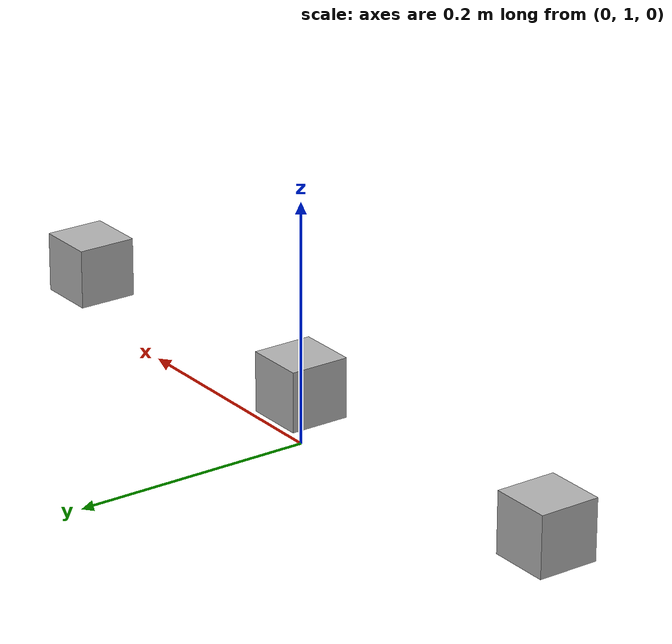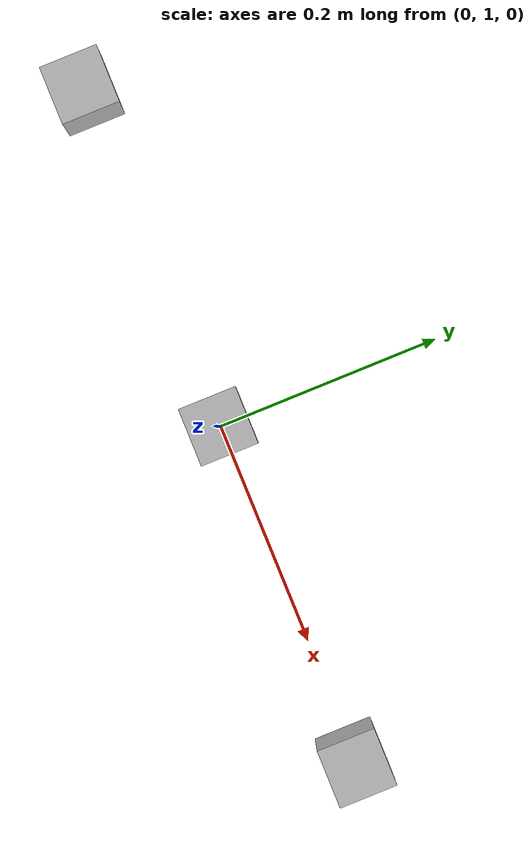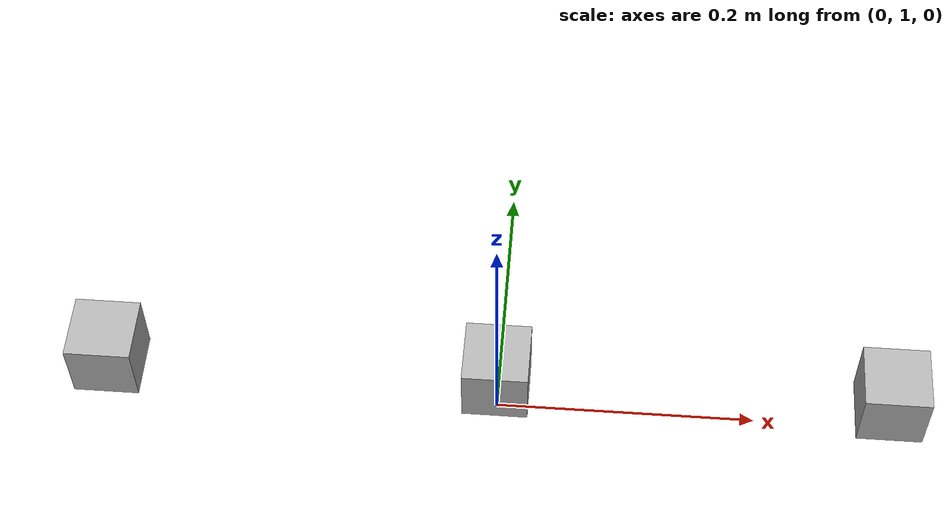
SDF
<?xml version="1.0" ?>
<sdf version='1.10'>
  <world name='default'>
    <gravity>0 0 -9.8000000000000007</gravity>
    <magnetic_field>5.5644999999999998e-06 2.2875799999999999e-05 -4.2388400000000002e-05</magnetic_field>
    <atmosphere type='adiabatic'/>
    <physics type='ode'>
      <max_step_size>0.001</max_step_size>
      <real_time_factor>1</real_time_factor>
      <real_time_update_rate>1000</real_time_update_rate>
    </physics>
    <scene>
      <ambient>0.400000006 0.400000006 0.400000006 1</ambient>
      <background>0.699999988 0.699999988 0.699999988 1</background>
      <shadows>true</shadows>
    </scene>
    <model name='charmander'>
      <pose>0.29999999999999999 1 0.050000000000000003 0 0 0</pose>
      <link name='box_link'>
        <inertial>
          <inertia>
            <ixx>0.16666</ixx>
            <ixy>0</ixy>
            <ixz>0</ixz>
            <iyy>0.16666</iyy>
            <iyz>0</iyz>
            <izz>0.16666</izz>
          </inertia>
          <mass>1</mass>
          <pose>0 0 0 0 0 0</pose>
        </inertial>
        <collision name='box_collision'>
          <geometry>
            <box>
              <size>0.050000000000000003 0.050000000000000003 0.050000000000000003</size>
            </box>
          </geometry>
          <surface>
            <friction>
              <ode/>
            </friction>
            <bounce/>
            <contact/>
          </surface>
        </collision>
        <visual name='box_visual'>
          <geometry>
            <box>
              <size>0.050000000000000003 0.050000000000000003 0.050000000000000003</size>
            </box>
          </geometry>
          <material>
            <ambient>0.300000012 0.300000012 0.300000012 1</ambient>
            <diffuse>0.699999988 0.699999988 0.699999988 1</diffuse>
            <specular>1 1 1 1</specular>
          </material>
        </visual>
        <pose>0 0 0 0 0 0</pose>
        <enable_wind>false</enable_wind>
      </link>
      <static>true</static>
      <self_collide>false</self_collide>
    </model>
    <model name='bulbasaur'>
      <pose>0 1 0.050000000000000003 0 0 0</pose>
      <link name='box_link'>
        <inertial>
          <inertia>
            <ixx>0.16666</ixx>
            <ixy>0</ixy>
            <ixz>0</ixz>
            <iyy>0.16666</iyy>
            <iyz>0</iyz>
            <izz>0.16666</izz>
          </inertia>
          <mass>1</mass>
          <pose>0 0 0 0 0 0</pose>
        </inertial>
        <collision name='box_collision'>
          <geometry>
            <box>
              <size>0.050000000000000003 0.050000000000000003 0.050000000000000003</size>
            </box>
          </geometry>
          <surface>
            <friction>
              <ode/>
            </friction>
            <bounce/>
            <contact/>
          </surface>
        </collision>
        <visual name='box_visual'>
          <geometry>
            <box>
              <size>0.050000000000000003 0.050000000000000003 0.050000000000000003</size>
            </box>
          </geometry>
          <material>
            <ambient>0.300000012 0.300000012 0.300000012 1</ambient>
            <diffuse>0.699999988 0.699999988 0.699999988 1</diffuse>
            <specular>1 1 1 1</specular>
          </material>
        </visual>
        <pose>0 0 0 0 0 0</pose>
        <enable_wind>false</enable_wind>
      </link>
      <static>true</static>
      <self_collide>false</self_collide>
    </model>
    <model name='squirtle'>
      <pose>-0.29999999999999999 1 0.050000000000000003 0 0 0</pose>
      <link name='box_link'>
        <inertial>
          <inertia>
            <ixx>0.16666</ixx>
            <ixy>0</ixy>
            <ixz>0</ixz>
            <iyy>0.16666</iyy>
            <iyz>0</iyz>
            <izz>0.16666</izz>
          </inertia>
          <mass>1</mass>
          <pose>0 0 0 0 0 0</pose>
        </inertial>
        <collision name='box_collision'>
          <geometry>
            <box>
              <size>0.050000000000000003 0.050000000000000003 0.050000000000000003</size>
            </box>
          </geometry>
          <surface>
            <friction>
              <ode/>
            </friction>
            <bounce/>
            <contact/>
          </surface>
        </collision>
        <visual name='box_visual'>
          <geometry>
            <box>
              <size>0.050000000000000003 0.050000000000000003 0.050000000000000003</size>
            </box>
          </geometry>
          <material>
            <ambient>0.300000012 0.300000012 0.300000012 1</ambient>
            <diffuse>0.699999988 0.699999988 0.699999988 1</diffuse>
            <specular>1 1 1 1</specular>
          </material>
        </visual>
        <pose>0 0 0 0 0 0</pose>
        <enable_wind>false</enable_wind>
      </link>
      <static>true</static>
      <self_collide>false</self_collide>
    </model>
  </world>
</sdf>
